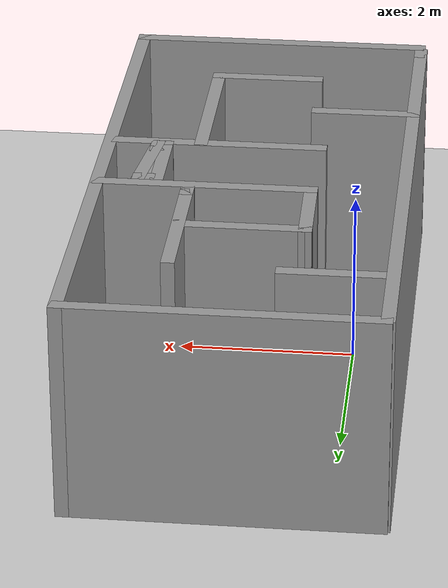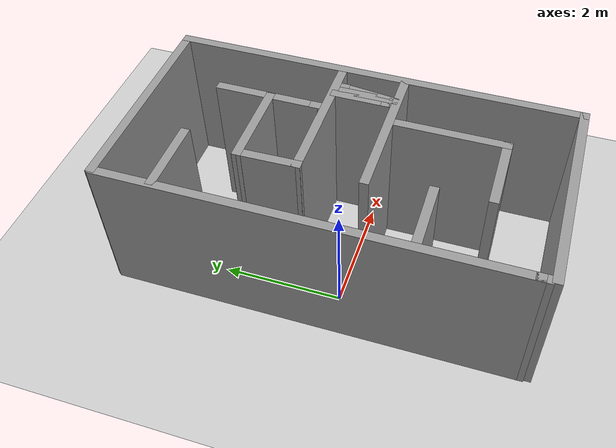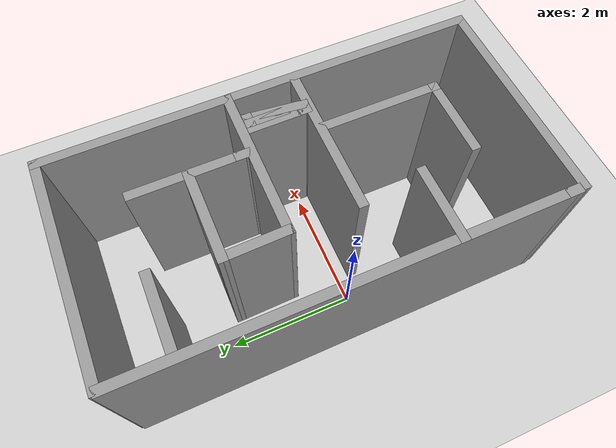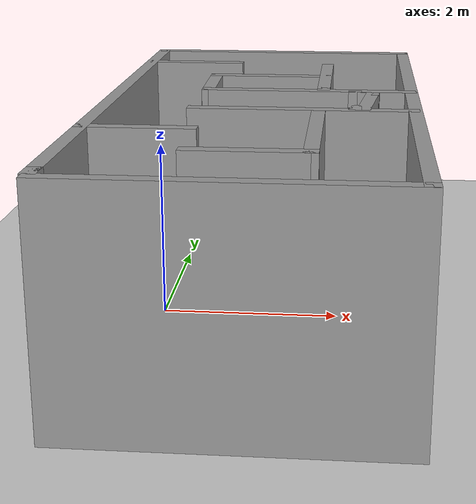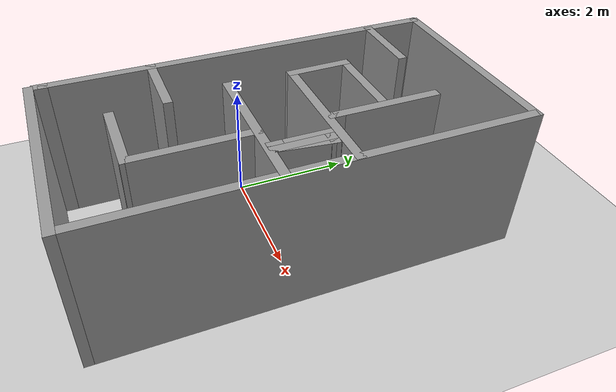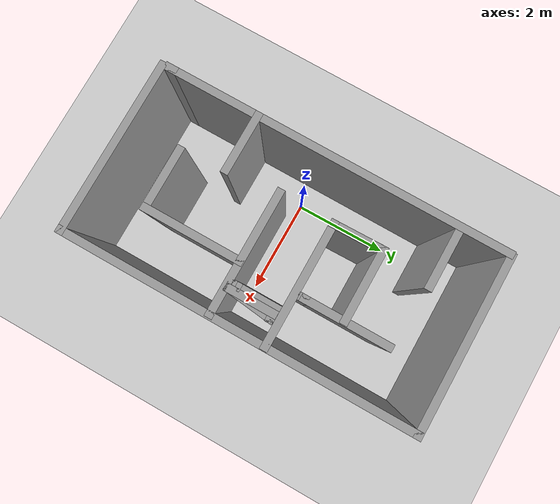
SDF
<sdf version="1.6">
 <world name="default">
  <light name="sun" type="directional">
   <pose>0 0 10 0 -0 0</pose>
   <diffuse>0.8 0.8 0.8 1</diffuse>
   <specular>0.2 0.2 0.2 1</specular>
   <attenuation>
    <range>1000</range>
    <constant>0.9</constant>
    <linear>0.01</linear>
    <quadratic>0.001</quadratic>
   </attenuation>
   <direction>-0.5 0.1 -0.9</direction>
  </light>
  <model name="ground_plane">
   <static>1</static>
   <link name="link">
    <collision name="collision">
     <geometry><plane><normal>0 0 1</normal><size>100 100</size></plane></geometry>
     <surface><friction><ode><mu>100</mu><mu2>50</mu2></ode></friction></surface>
    </collision>
    <visual name="visual">
     <cast_shadows>0</cast_shadows>
     <geometry><plane><normal>0 0 1</normal><size>100 100</size></plane></geometry>
     <material>
      <script><uri>file://media/materials/scripts/gazebo.material</uri><name>Gazebo/Grey</name></script>
     </material>
    </visual>
   </link>
  </model>
  <gravity>0 0 -9.8</gravity>
  <magnetic_field>6e-06 2.3e-05 -4.2e-05</magnetic_field>
  <atmosphere type="adiabatic"/>
  <physics name="default_physics" default="0" type="ode">
   <max_step_size>0.001</max_step_size>
   <real_time_factor>1</real_time_factor>
   <real_time_update_rate>1000</real_time_update_rate>
  </physics>
  <scene><ambient>0.4 0.4 0.4 1</ambient><background>0.7 0.7 0.7 1</background><shadows>1</shadows></scene>
  <spherical_coordinates>
   <surface_model>EARTH_WGS84</surface_model>
   <latitude_deg>0</latitude_deg>
   <longitude_deg>0</longitude_deg>
   <elevation>0</elevation>
   <heading_deg>0</heading_deg>
  </spherical_coordinates>
  <model name="filed1.0">
   <pose>1.11796 0.2386 0 0 -0 0</pose>
   <link name="Wall_1">
    <collision name="Wall_1_Collision">
     <geometry><box><size>6.75 0.15 2.5</size></box></geometry>
     <pose>0 0 1.25 0 -0 0</pose>
    </collision>
    <visual name="Wall_1_Visual">
     <pose>0 0 1.25 0 -0 0</pose>
     <geometry><box><size>6.75 0.15 2.5</size></box></geometry>
     <material>
      <script><uri>file://media/materials/scripts/gazebo.material</uri><name>Gazebo/Grey</name></script>
      <ambient>1 1 1 1</ambient>
     </material>
    </visual>
    <pose>-1.68779 0.09002 0 0 0 -1.5708</pose>
   </link>
   <link name="Wall_11">
    <collision name="Wall_11_Collision">
     <geometry><box><size>1.25 0.15 2.5</size></box></geometry>
     <pose>0 0 1.25 0 -0 0</pose>
    </collision>
    <visual name="Wall_11_Visual">
     <pose>0 0 1.25 0 -0 0</pose>
     <geometry><box><size>1.25 0.15 2.5</size></box></geometry>
     <material>
      <script><uri>file://media/materials/scripts/gazebo.material</uri><name>Gazebo/Grey</name></script>
      <ambient>1 1 1 1</ambient>
     </material>
    </visual>
    <pose>-1.08532 2.46305 0 0 -0 0</pose>
   </link>
   <link name="Wall_13">
    <collision name="Wall_13_Collision">
     <geometry><box><size>2.5 0.15 2.5</size></box></geometry>
     <pose>0 0 1.25 0 -0 0</pose>
    </collision>
    <visual name="Wall_13_Visual">
     <pose>0 0 1.25 0 -0 0</pose>
     <geometry><box><size>2.5 0.15 2.5</size></box></geometry>
     <material>
      <script><uri>file://media/materials/scripts/gazebo.material</uri><name>Gazebo/Grey</name></script>
      <ambient>1 1 1 1</ambient>
     </material>
    </visual>
    <pose>0.501633 0.55663 0 0 -0 0</pose>
   </link>
   <link name="Wall_15">
    <collision name="Wall_15_Collision">
     <geometry><box><size>1.09462 0.15 2.5</size></box></geometry>
     <pose>0 0 1.25 0 -0 0</pose>
    </collision>
    <visual name="Wall_15_Visual">
     <pose>0 0 1.25 0 -0 0</pose>
     <geometry><box><size>1.09462 0.15 2.5</size></box></geometry>
     <material>
      <script><uri>file://media/materials/scripts/gazebo.material</uri><name>Gazebo/Grey</name></script>
      <ambient>1 1 1 1</ambient>
     </material>
    </visual>
    <pose>-0.682113 1.02886 0 0 0 -1.55228</pose>
   </link>
   <link name="Wall_17">
    <collision name="Wall_17_Collision">
     <geometry><box><size>1.5 0.15 2.5</size></box></geometry>
     <pose>0 0 1.25 0 -0 0</pose>
    </collision>
    <visual name="Wall_17_Visual">
     <pose>0 0 1.25 0 -0 0</pose>
     <geometry><box><size>1.5 0.15 2.5</size></box></geometry>
     <material>
      <script><uri>file://media/materials/scripts/gazebo.material</uri><name>Gazebo/Grey</name></script>
      <ambient>1 1 1 1</ambient>
     </material>
    </visual>
    <pose>-0.015857 1.50109 0 0 -0 0</pose>
   </link>
   <link name="Wall_19">
    <collision name="Wall_19_Collision">
     <geometry><box><size>1.75 0.15 2.5</size></box></geometry>
     <pose>0 0 1.25 0 -0 0</pose>
    </collision>
    <visual name="Wall_19_Visual">
     <pose>0 0 1.25 0 -0 0</pose>
     <geometry><box><size>1.75 0.15 2.5</size></box></geometry>
     <material>
      <script><uri>file://media/materials/scripts/gazebo.material</uri><name>Gazebo/Grey</name></script>
      <ambient>1 1 1 1</ambient>
     </material>
    </visual>
    <pose>0.673367 1.54062 0 0 0 -1.5708</pose>
   </link>
   <link name="Wall_2">
    <collision name="Wall_2_Collision">
     <geometry><box><size>0.25 0.15 2.5</size></box></geometry>
     <pose>0 0 1.25 0 -0 0</pose>
    </collision>
    <visual name="Wall_2_Visual">
     <pose>0 0 1.25 0 -0 0</pose>
     <geometry><box><size>0.25 0.15 2.5</size></box></geometry>
     <material>
      <script><uri>file://media/materials/scripts/gazebo.material</uri><name>Gazebo/Grey</name></script>
      <ambient>1 1 1 1</ambient>
     </material>
    </visual>
    <pose>-1.68779 -3.25998 0 0 0 -1.5708</pose>
   </link>
   <link name="Wall_20">
    <collision name="Wall_20_Collision">
     <geometry><box><size>0.25 0.15 2.5</size></box></geometry>
     <pose>0 0 1.25 0 -0 0</pose>
    </collision>
    <visual name="Wall_20_Visual">
     <pose>0 0 1.25 0 -0 0</pose>
     <geometry><box><size>0.25 0.15 2.5</size></box></geometry>
     <material>
      <script><uri>file://media/materials/scripts/gazebo.material</uri><name>Gazebo/Grey</name></script>
      <ambient>1 1 1 1</ambient>
     </material>
    </visual>
    <pose>0.673367 0.690616 0 0 0 -1.5708</pose>
   </link>
   <link name="Wall_22">
    <collision name="Wall_22_Collision">
     <geometry><box><size>1.25 0.15 2.5</size></box></geometry>
     <pose>0 0 1.25 0 -0 0</pose>
    </collision>
    <visual name="Wall_22_Visual">
     <pose>0 0 1.25 0 -0 0</pose>
     <geometry><box><size>1.25 0.15 2.5</size></box></geometry>
     <material>
      <script><uri>file://media/materials/scripts/gazebo.material</uri><name>Gazebo/Grey</name></script>
      <ambient>1 1 1 1</ambient>
     </material>
    </visual>
    <pose>-1.13779 -1.5072 0 0 -0 0</pose>
   </link>
   <link name="Wall_24">
    <collision name="Wall_24_Collision">
     <geometry><box><size>2.5 0.15 2.5</size></box></geometry>
     <pose>0 0 1.25 0 -0 0</pose>
    </collision>
    <visual name="Wall_24_Visual">
     <pose>0 0 1.25 0 -0 0</pose>
     <geometry><box><size>2.5 0.15 2.5</size></box></geometry>
     <material>
      <script><uri>file://media/materials/scripts/gazebo.material</uri><name>Gazebo/Grey</name></script>
      <ambient>1 1 1 1</ambient>
     </material>
    </visual>
    <pose>0.484143 -0.510264 0 0 -0 0</pose>
   </link>
   <link name="Wall_26">
    <collision name="Wall_26_Collision">
     <geometry><box><size>2 0.15 2.5</size></box></geometry>
     <pose>0 0 1.25 0 -0 0</pose>
    </collision>
    <visual name="Wall_26_Visual">
     <pose>0 0 1.25 0 -0 0</pose>
     <geometry><box><size>2 0.15 2.5</size></box></geometry>
     <material>
      <script><uri>file://media/materials/scripts/gazebo.material</uri><name>Gazebo/Grey</name></script>
      <ambient>1 1 1 1</ambient>
     </material>
    </visual>
    <pose>0.655877 -1.45275 0 0 0 -1.5708</pose>
   </link>
   <link name="Wall_28">
    <collision name="Wall_28_Collision">
     <geometry><box><size>1.30435 0.15 2.5</size></box></geometry>
     <pose>0 0 1.25 0 -0 0</pose>
    </collision>
    <visual name="Wall_28_Visual">
     <pose>0 0 1.25 0 -0 0</pose>
     <geometry><box><size>1.30435 0.15 2.5</size></box></geometry>
     <material>
      <script><uri>file://media/materials/scripts/gazebo.material</uri><name>Gazebo/Grey</name></script>
      <ambient>1 1 1 1</ambient>
     </material>
    </visual>
    <pose>0.078705 -2.37973 0 0 -0 0.003419</pose>
   </link>
   <link name="Wall_30">
    <collision name="Wall_30_Collision">
     <geometry><box><size>1 0.15 2.5</size></box></geometry>
     <pose>0 0 1.25 0 -0 0</pose>
    </collision>
    <visual name="Wall_30_Visual">
     <pose>0 0 1.25 0 -0 0</pose>
     <geometry><box><size>1 0.15 2.5</size></box></geometry>
     <material>
      <script><uri>file://media/materials/scripts/gazebo.material</uri><name>Gazebo/Grey</name></script>
      <ambient>1 1 1 1</ambient>
     </material>
    </visual>
    <pose>1.04066 0.07916 0 0 0 -1.5708</pose>
   </link>
   <link name="Wall_31">
    <collision name="Wall_31_Collision">
     <geometry><box><size>0.25 0.15 2.5</size></box></geometry>
     <pose>0 0 1.25 0 -0 0</pose>
    </collision>
    <visual name="Wall_31_Visual">
     <pose>0 0 1.25 0 -0 0</pose>
     <geometry><box><size>0.25 0.15 2.5</size></box></geometry>
     <material>
      <script><uri>file://media/materials/scripts/gazebo.material</uri><name>Gazebo/Grey</name></script>
      <ambient>1 1 1 1</ambient>
     </material>
    </visual>
    <pose>1.04066 -0.39584 0 0 0 -1.5708</pose>
   </link>
   <link name="Wall_32">
    <collision name="Wall_32_Collision">
     <geometry><box><size>0.25 0.15 2.5</size></box></geometry>
     <pose>0 0 1.25 0 -0 0</pose>
    </collision>
    <visual name="Wall_32_Visual">
     <pose>0 0 1.25 0 -0 0</pose>
     <geometry><box><size>0.25 0.15 2.5</size></box></geometry>
     <material>
      <script><uri>file://media/materials/scripts/gazebo.material</uri><name>Gazebo/Grey</name></script>
      <ambient>1 1 1 1</ambient>
     </material>
    </visual>
    <pose>1.09066 -0.44584 0 0 -0 0</pose>
   </link>
   <link name="Wall_33">
    <collision name="Wall_33_Collision">
     <geometry><box><size>1 0.15 2.5</size></box></geometry>
     <pose>0 0 1.25 0 -0 0</pose>
    </collision>
    <visual name="Wall_33_Visual">
     <pose>0 0 1.25 0 -0 0</pose>
     <geometry><box><size>1 0.15 2.5</size></box></geometry>
     <material>
      <script><uri>file://media/materials/scripts/gazebo.material</uri><name>Gazebo/Grey</name></script>
      <ambient>1 1 1 1</ambient>
     </material>
    </visual>
    <pose>1.14066 -0.02084 0 0 -0 1.5708</pose>
   </link>
   <link name="Wall_38">
    <collision name="Wall_38_Collision">
     <geometry><box><size>0.25 0.15 2.5</size></box></geometry>
     <pose>0 0 1.25 0 -0 0</pose>
    </collision>
    <visual name="Wall_38_Visual">
     <pose>0 0 1.25 0 -0 0</pose>
     <geometry><box><size>0.25 0.15 2.5</size></box></geometry>
     <material>
      <script><uri>file://media/materials/scripts/gazebo.material</uri><name>Gazebo/Grey</name></script>
      <ambient>1 1 1 1</ambient>
     </material>
    </visual>
    <pose>1.19066 0.40416 0 0 -0 0</pose>
   </link>
   <link name="Wall_39">
    <collision name="Wall_39_Collision">
     <geometry><box><size>1.00586 0.15 2.5</size></box></geometry>
     <pose>0 0 1.25 0 -0 0</pose>
    </collision>
    <visual name="Wall_39_Visual">
     <pose>0 0 1.25 0 -0 0</pose>
     <geometry><box><size>1.00586 0.15 2.5</size></box></geometry>
     <material>
      <script><uri>file://media/materials/scripts/gazebo.material</uri><name>Gazebo/Grey</name></script>
      <ambient>1 1 1 1</ambient>
     </material>
    </visual>
    <pose>1.19066 -0.02084 0 0 0 -1.6879</pose>
   </link>
   <link name="Wall_5">
    <collision name="Wall_5_Collision">
     <geometry><box><size>7 0.15 2.5</size></box></geometry>
     <pose>0 0 1.25 0 -0 0</pose>
    </collision>
    <visual name="Wall_5_Visual">
     <pose>0 0 1.25 0 -0 0</pose>
     <geometry><box><size>7 0.15 2.5</size></box></geometry>
     <material>
      <script><uri>file://media/materials/scripts/gazebo.material</uri><name>Gazebo/Grey</name></script>
      <ambient>1 1 1 1</ambient>
     </material>
    </visual>
    <pose>1.68779 0 0 0 0 -1.5708</pose>
   </link>
   <link name="Wall_6">
    <collision name="Wall_6_Collision">
     <geometry><box><size>3.5 0.15 2.5</size></box></geometry>
     <pose>0 0 1.25 0 -0 0</pose>
    </collision>
    <visual name="Wall_6_Visual">
     <pose>0 0 1.25 0 -0 0</pose>
     <geometry><box><size>3.5 0.15 2.5</size></box></geometry>
     <material>
      <script><uri>file://media/materials/scripts/gazebo.material</uri><name>Gazebo/Grey</name></script>
      <ambient>1 1 1 1</ambient>
     </material>
    </visual>
    <pose>0.012791 -3.425 0 0 -0 3.14159</pose>
   </link>
   <link name="Wall_9">
    <collision name="Wall_9_Collision">
     <geometry><box><size>3.5 0.15 2.5</size></box></geometry>
     <pose>0 0 1.25 0 -0 0</pose>
    </collision>
    <visual name="Wall_9_Visual">
     <pose>0 0 1.25 0 -0 0</pose>
     <geometry><box><size>3.5 0.15 2.5</size></box></geometry>
     <material>
      <script><uri>file://media/materials/scripts/gazebo.material</uri><name>Gazebo/Grey</name></script>
      <ambient>1 1 1 1</ambient>
     </material>
    </visual>
    <pose>0.012791 3.425 0 0 -0 3.14159</pose>
   </link>
   <static>1</static>
  </model>
 </world>
</sdf>
